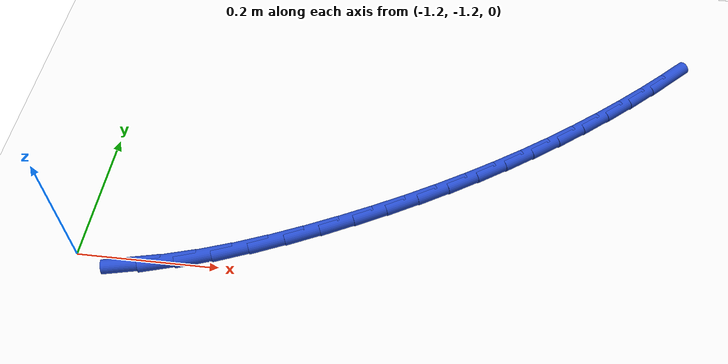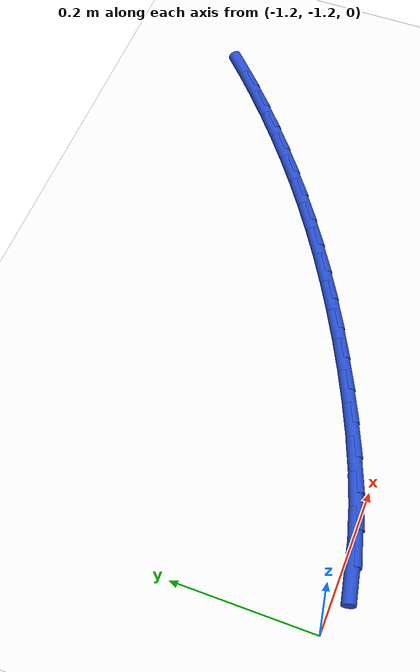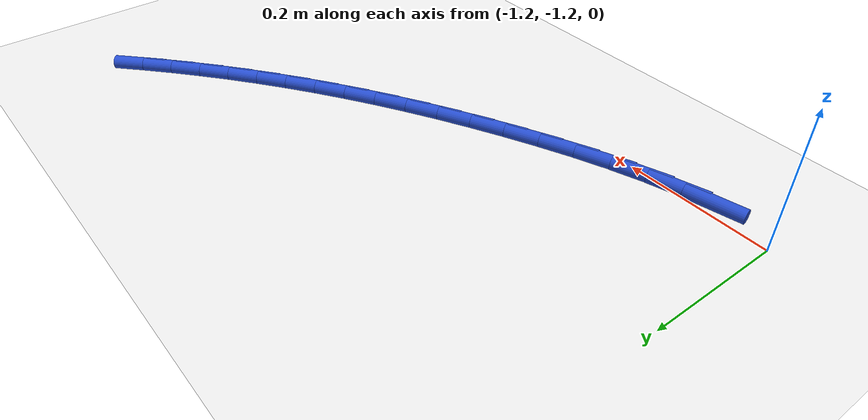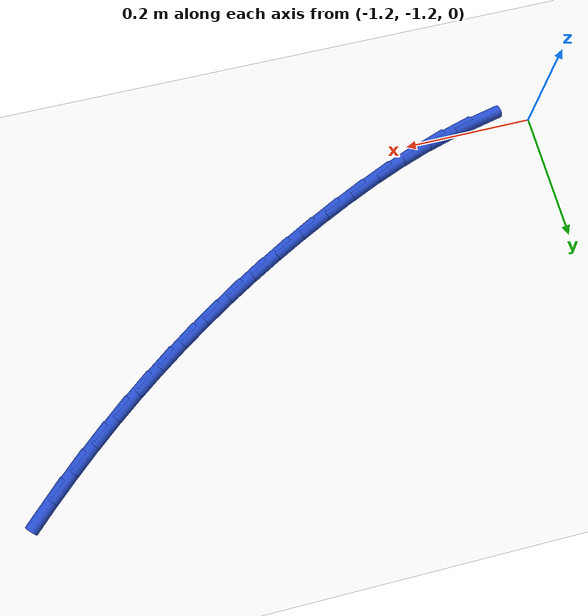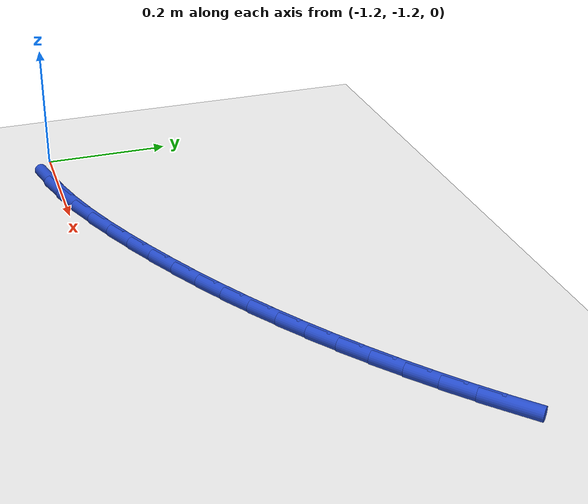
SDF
<sdf version="1.6">
 <world name="default">
  <model name="ground_plane">
   <static>1</static>
   <link name="link">
    <collision name="collision">
     <geometry><plane><normal>0 0 1</normal><size>100 100</size></plane></geometry>
     <surface><friction><ode><mu>100</mu><mu2>50</mu2></ode></friction></surface>
    </collision>
    <visual name="visual">
     <cast_shadows>0</cast_shadows>
     <geometry><plane><normal>0 0 1</normal><size>100 100</size></plane></geometry>
     <material>
      <script><uri>file://media/materials/scripts/gazebo.material</uri><name>Gazebo/WhiteGlow</name></script>
     </material>
    </visual>
   </link>
  </model>
  <model name="line">
   <link name="link_113">
    <pose>-1.1165261280940784 -1.2129515918660418 0.01 0 1.57 0.22245652903113902</pose>
    <collision name="collision">
     <geometry><cylinder><radius>0.01</radius><length>0.08</length></cylinder></geometry>
    </collision>
    <visual name="visual">
     <material>
      <script><name>Gazebo/Blue</name><uri>file://media/materials/scripts/gazebo.material</uri></script>
     </material>
     <geometry><cylinder><radius>0.01</radius><length>0.08</length></cylinder></geometry>
    </visual>
   </link>
   <link name="link_114">
    <pose>-1.0696275312691004 -1.2023431192391003 0.01 0 1.57 0.28770039955742804</pose>
    <collision name="collision">
     <geometry><cylinder><radius>0.01</radius><length>0.08</length></cylinder></geometry>
    </collision>
    <visual name="visual">
     <material>
      <script><name>Gazebo/Blue</name><uri>file://media/materials/scripts/gazebo.material</uri></script>
     </material>
     <geometry><cylinder><radius>0.01</radius><length>0.08</length></cylinder></geometry>
    </visual>
   </link>
   <link name="link_115">
    <pose>-1.0225238113345212 -1.1884046518555698 0.01 0 1.57 0.34149941693006014</pose>
    <collision name="collision">
     <geometry><cylinder><radius>0.01</radius><length>0.08</length></cylinder></geometry>
    </collision>
    <visual name="visual">
     <material>
      <script><name>Gazebo/Blue</name><uri>file://media/materials/scripts/gazebo.material</uri></script>
     </material>
     <geometry><cylinder><radius>0.01</radius><length>0.08</length></cylinder></geometry>
    </visual>
   </link>
   <link name="link_116">
    <pose>-0.975507891906886 -1.1716940274745276 0.01 0 1.57 0.38550337702137205</pose>
    <collision name="collision">
     <geometry><cylinder><radius>0.01</radius><length>0.08</length></cylinder></geometry>
    </collision>
    <visual name="visual">
     <material>
      <script><name>Gazebo/Blue</name><uri>file://media/materials/scripts/gazebo.material</uri></script>
     </material>
     <geometry><cylinder><radius>0.01</radius><length>0.08</length></cylinder></geometry>
    </visual>
   </link>
   <link name="link_117">
    <pose>-0.9288726966027401 -1.1527690838550517 0.01 0 1.57 0.4210200734781828</pose>
    <collision name="collision">
     <geometry><cylinder><radius>0.01</radius><length>0.08</length></cylinder></geometry>
    </collision>
    <visual name="visual">
     <material>
      <script><name>Gazebo/Blue</name><uri>file://media/materials/scripts/gazebo.material</uri></script>
     </material>
     <geometry><cylinder><radius>0.01</radius><length>0.08</length></cylinder></geometry>
    </visual>
   </link>
   <link name="link_118">
    <pose>-0.8829111490386263 -1.1321876587562187 0.01 0 1.57 0.4490726371742719</pose>
    <collision name="collision">
     <geometry><cylinder><radius>0.01</radius><length>0.08</length></cylinder></geometry>
    </collision>
    <visual name="visual">
     <material>
      <script><name>Gazebo/Blue</name><uri>file://media/materials/scripts/gazebo.material</uri></script>
     </material>
     <geometry><cylinder><radius>0.01</radius><length>0.08</length></cylinder></geometry>
    </visual>
   </link>
   <link name="link_119">
    <pose>-0.8379133179605293 -1.110502672007907 0.01 0 1.57 0.47317113055453097</pose>
    <collision name="collision">
     <geometry><cylinder><radius>0.01</radius><length>0.08</length></cylinder></geometry>
    </collision>
    <visual name="visual">
     <material>
      <script><name>Gazebo/Blue</name><uri>file://media/materials/scripts/gazebo.material</uri></script>
     </material>
     <geometry><cylinder><radius>0.01</radius><length>0.08</length></cylinder></geometry>
    </visual>
   </link>
   <link name="link_120">
    <pose>-0.7940374057044293 -1.0880398843957488 0.01 0 1.57 0.4975057322790322</pose>
    <collision name="collision">
     <geometry><cylinder><radius>0.01</radius><length>0.08</length></cylinder></geometry>
    </collision>
    <visual name="visual">
     <material>
      <script><name>Gazebo/Blue</name><uri>file://media/materials/scripts/gazebo.material</uri></script>
     </material>
     <geometry><cylinder><radius>0.01</radius><length>0.08</length></cylinder></geometry>
    </visual>
   </link>
   <link name="link_121">
    <pose>-0.7512571479380493 -1.064807286076326 0.01 0 1.57 0.5223105151742631</pose>
    <collision name="collision">
     <geometry><cylinder><radius>0.01</radius><length>0.08</length></cylinder></geometry>
    </collision>
    <visual name="visual">
     <material>
      <script><name>Gazebo/Blue</name><uri>file://media/materials/scripts/gazebo.material</uri></script>
     </material>
     <geometry><cylinder><radius>0.01</radius><length>0.08</length></cylinder></geometry>
    </visual>
   </link>
   <link name="link_122">
    <pose>-0.7095325323967834 -1.040789184395956 0.01 0 1.57 0.5475039563766845</pose>
    <collision name="collision">
     <geometry><cylinder><radius>0.01</radius><length>0.08</length></cylinder></geometry>
    </collision>
    <visual name="visual">
     <material>
      <script><name>Gazebo/Blue</name><uri>file://media/materials/scripts/gazebo.material</uri></script>
     </material>
     <geometry><cylinder><radius>0.01</radius><length>0.08</length></cylinder></geometry>
    </visual>
   </link>
   <link name="link_123">
    <pose>-0.668823546816023 -1.0159698867009543 0.01 0 1.57 0.572997338573224</pose>
    <collision name="collision">
     <geometry><cylinder><radius>0.01</radius><length>0.08</length></cylinder></geometry>
    </collision>
    <visual name="visual">
     <material>
      <script><name>Gazebo/Blue</name><uri>file://media/materials/scripts/gazebo.material</uri></script>
     </material>
     <geometry><cylinder><radius>0.01</radius><length>0.08</length></cylinder></geometry>
    </visual>
   </link>
   <link name="link_124">
    <pose>-0.6290901789311618 -0.9903337003376391 0.01 0 1.57 0.5986959262395465</pose>
    <collision name="collision">
     <geometry><cylinder><radius>0.01</radius><length>0.08</length></cylinder></geometry>
    </collision>
    <visual name="visual">
     <material>
      <script><name>Gazebo/Blue</name><uri>file://media/materials/scripts/gazebo.material</uri></script>
     </material>
     <geometry><cylinder><radius>0.01</radius><length>0.08</length></cylinder></geometry>
    </visual>
   </link>
   <link name="link_125">
    <pose>-0.590292416477594 -0.9638649326523281 0.01 0 1.57 0.6245003773239531</pose>
    <collision name="collision">
     <geometry><cylinder><radius>0.01</radius><length>0.08</length></cylinder></geometry>
    </collision>
    <visual name="visual">
     <material>
      <script><name>Gazebo/Blue</name><uri>file://media/materials/scripts/gazebo.material</uri></script>
     </material>
     <geometry><cylinder><radius>0.01</radius><length>0.08</length></cylinder></geometry>
    </visual>
   </link>
   <link name="link_126">
    <pose>-0.552390247190711 -0.9365478909913368 0.01 0 1.57 0.6503083436465199</pose>
    <collision name="collision">
     <geometry><cylinder><radius>0.01</radius><length>0.08</length></cylinder></geometry>
    </collision>
    <visual name="visual">
     <material>
      <script><name>Gazebo/Blue</name><uri>file://media/materials/scripts/gazebo.material</uri></script>
     </material>
     <geometry><cylinder><radius>0.01</radius><length>0.08</length></cylinder></geometry>
    </visual>
   </link>
   <link name="link_127">
    <pose>-0.5153436588059074 -0.9083668827009839 0.01 0 1.57 0.6760161995104711</pose>
    <collision name="collision">
     <geometry><cylinder><radius>0.01</radius><length>0.08</length></cylinder></geometry>
    </collision>
    <visual name="visual">
     <material>
      <script><name>Gazebo/Blue</name><uri>file://media/materials/scripts/gazebo.material</uri></script>
     </material>
     <geometry><cylinder><radius>0.01</radius><length>0.08</length></cylinder></geometry>
    </visual>
   </link>
   <link name="link_128">
    <pose>-0.4791126390585748 -0.8793062151275852 0.01 0 1.57 0.7015208283067826</pose>
    <collision name="collision">
     <geometry><cylinder><radius>0.01</radius><length>0.08</length></cylinder></geometry>
    </collision>
    <visual name="visual">
     <material>
      <script><name>Gazebo/Blue</name><uri>file://media/materials/scripts/gazebo.material</uri></script>
     </material>
     <geometry><cylinder><radius>0.01</radius><length>0.08</length></cylinder></geometry>
    </visual>
   </link>
   <link name="link_129">
    <pose>-0.4436571756841072 -0.8493501956174582 0.01 0 1.57 0.7267213923927419</pose>
    <collision name="collision">
     <geometry><cylinder><radius>0.01</radius><length>0.08</length></cylinder></geometry>
    </collision>
    <visual name="visual">
     <material>
      <script><name>Gazebo/Blue</name><uri>file://media/materials/scripts/gazebo.material</uri></script>
     </material>
     <geometry><cylinder><radius>0.01</radius><length>0.08</length></cylinder></geometry>
    </visual>
   </link>
   <link name="link_130">
    <pose>-0.4089372564178982 -0.8184831315169212 0.01 0 1.57 0.7515210127911368</pose>
    <collision name="collision">
     <geometry><cylinder><radius>0.01</radius><length>0.08</length></cylinder></geometry>
    </collision>
    <visual name="visual">
     <material>
      <script><name>Gazebo/Blue</name><uri>file://media/materials/scripts/gazebo.material</uri></script>
     </material>
     <geometry><cylinder><radius>0.01</radius><length>0.08</length></cylinder></geometry>
    </visual>
   </link>
   <link name="link_131">
    <pose>-0.3749128689953397 -0.7866893301722894 0.01 0 1.57 0.7758282921328219</pose>
    <collision name="collision">
     <geometry><cylinder><radius>0.01</radius><length>0.08</length></cylinder></geometry>
    </collision>
    <visual name="visual">
     <material>
      <script><name>Gazebo/Blue</name><uri>file://media/materials/scripts/gazebo.material</uri></script>
     </material>
     <geometry><cylinder><radius>0.01</radius><length>0.08</length></cylinder></geometry>
    </visual>
   </link>
  </model>
 </world>
</sdf>
